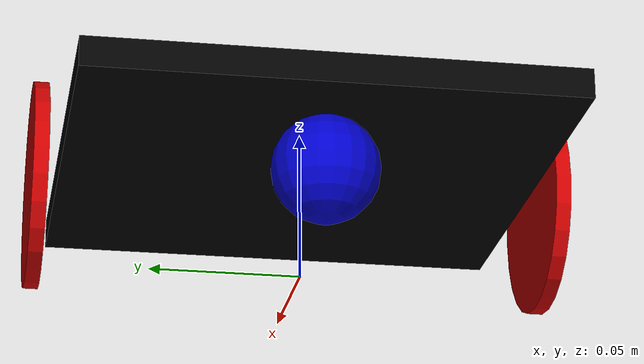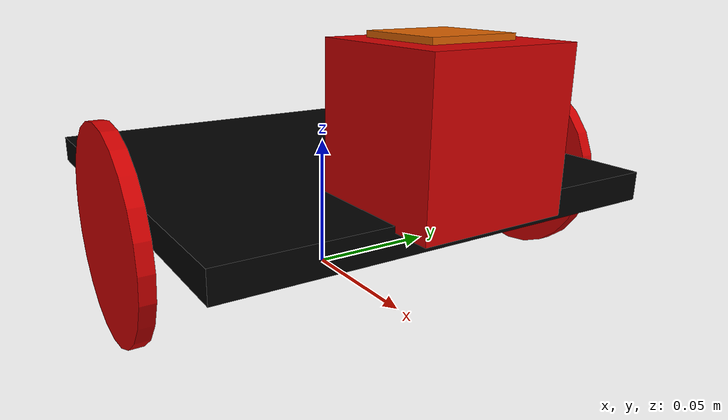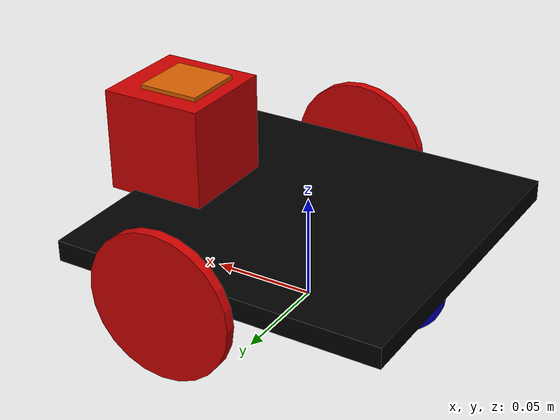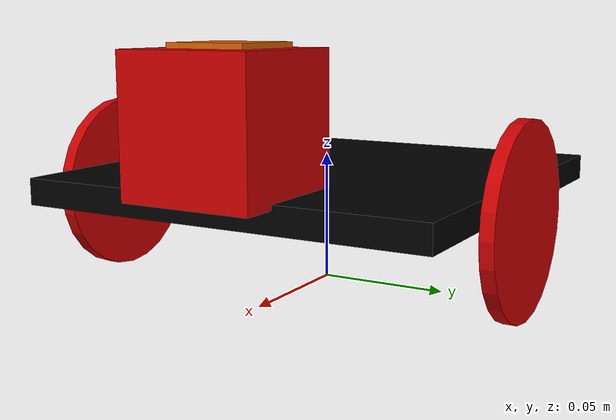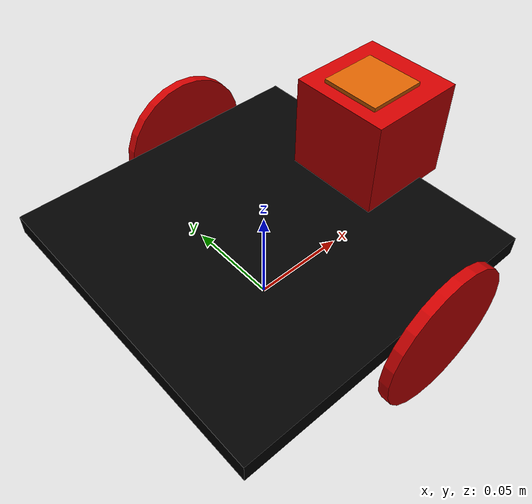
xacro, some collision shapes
<?xml version="1.0"?>
<robot xmlns:xacro="http://www.ros.org/wiki/xacro" name="kbot">

  <xacro:property name="base_width" value="0.16"/>
  <xacro:property name="base_len" value="0.16"/>
  <xacro:property name="wheel_radius" value="0.035"/>
  <xacro:property name="base_wheel_gap" value="0.007"/>
  <xacro:property name="wheel_separation" value="0.15"/>
  <xacro:property name="wheel_joint_offset" value="0.02"/>

  <xacro:property name="caster_wheel_radius" value="${wheel_radius/2}"/>
  <xacro:property name="caster_wheel_mass" value="0.001"/>
  <xacro:property name="caster_wheel_joint_offset" value="-0.052"/>

  <!-- camera Added by me -->
  <xacro:property name="camera_link" value="0.05" /> <!-- Size of square 'camera' box -->

  <!-- Laser plugIn properties -->
  <xacro:property name="laser_size_x" value="0.03"/>
  <xacro:property name="laser_size_y" value="0.03"/>
  <xacro:property name="laser_size_z" value="0.04"/>
  <xacro:property name="laser_origin_x" value="0.065"/>
  <xacro:property name="laser_origin_y" value="0"/>
  <xacro:property name="laser_origin_z" value="0.035"/>

  <!--Color Properties-->
  <material name="blue">
    <color rgba="0 0 0.8 1"/>
  </material>
  <material name="black">
    <color rgba="0 0 0 1"/>
  </material>
  <material name="white">
    <color rgba="1 1 1 1"/>
  </material>
  <material name="red">
    <color rgba="0.8 0.0 0.0 1.0"/>
  </material>

  <!--Interial macros-->
  <xacro:macro name="cylinder_inertia" params="m r h">
    <inertial>
      <mass value="${m}"/>
      <inertia ixx="${m*(3*r*r+h*h)/12}" ixy = "0" ixz = "0" iyy="${m*(3*r*r+h*h)/12}" iyz = "0" izz="${m*r*r/2}"/>
    </inertial>
  </xacro:macro>

  <xacro:macro name="box_inertia" params="m w h d">
    <inertial>
      <mass value="${m}"/>
      <inertia ixx="${m / 12.0 * (d*d + h*h)}" ixy="0.0" ixz="0.0" iyy="${m / 12.0 * (w*w + h*h)}" iyz="0.0" izz="${m / 12.0 * (w*w + d*d)}"/>
    </inertial>
  </xacro:macro>

  <xacro:macro name="sphere_inertia" params="m r">
    <inertial>
      <mass value="${m}"/>
      <inertia ixx="${2.0*m*(r*r)/5.0}" ixy="0.0" ixz="0.0" iyy="${2.0*m*(r*r)/5.0}" iyz="0.0" izz="${2.0*m*(r*r)/5.0}"/>
    </inertial>
  </xacro:macro>

  <!--Base Footprint-->
  <link name="base_footprint">
    <xacro:box_inertia m="10" w="0.001" h="0.001" d="0.001"/>
    <visual>
        <origin xyz="0 0 0" rpy="0 0 0" />
        <geometry>
            <box size="0.001 0.001 0.001" />
        </geometry>
    </visual>
  </link>

  <!--Base link-->
  <link name="base_link">
    <xacro:box_inertia m="1" w="${base_len}" h="${base_width}" d="0.01"/>
    <visual>
      <geometry>
        <box size="${base_len} ${base_width} 0.01"/>
      </geometry>
      <material name="black"/>
    </visual>
    <collision>
      <geometry>
        <box size="${base_len} ${base_width} 0.01"/>
      </geometry>
    </collision>
  </link>

  <!--base_link to base_footprint Joint-->
  <joint name="base_link_joint" type="fixed">
    <origin xyz="0 0 ${wheel_radius + 0.005}" rpy="0 0 0" />
    <parent link="base_footprint"/>
    <child link="base_link" />
  </joint>

  <!--Wheel link & joint macro-->
  <xacro:macro name="wheel" params="prefix reflect">
    <link name="${prefix}_wheel">
      <visual>
        <origin xyz="0 0 0" rpy="${pi/2} 0 0"/>
        <geometry>
          <cylinder radius="${wheel_radius}" length="0.005"/>
        </geometry>
        <material name="red"/>
      </visual>
      <collision>
        <origin xyz="0 0 0" rpy="${pi/2} 0 0"/>
        <geometry>
          <cylinder radius="${wheel_radius}" length="0.005"/>
        </geometry>
      </collision>
      <xacro:cylinder_inertia m="1" r="${wheel_radius}" h="0.005"/>
    </link>

    <joint name="${prefix}_wheel_joint" type="continuous">
      <axis xyz="0 1 0" rpy="0 0 0" />
      <parent link="base_link"/>
      <child link="${prefix}_wheel"/>
      <origin xyz="${wheel_joint_offset} ${((base_width/2)+base_wheel_gap)*reflect} -0.005" rpy="0 0 0"/>
    </joint>
  </xacro:macro>

  <!--Create Left & Right Wheel links/joints-->
  <xacro:wheel prefix="left" reflect="1"/>
  <xacro:wheel prefix="right" reflect="-1"/>

  <!--Caster Wheel Link-->
  <link name="caster_wheel">
    <visual>
      <origin xyz="0 0 0" rpy="0 0 0"/>
      <geometry>
        <sphere radius="${caster_wheel_radius}"/>
      </geometry>
      <material name="blue"/>
    </visual>
    <collision>
      <origin xyz="0 0 0" rpy="0 0 0"/>
      <geometry>
        <sphere radius="${caster_wheel_radius}"/>
      </geometry>
    </collision>
    <xacro:sphere_inertia m="1" r="${caster_wheel_radius}"/>
  </link>

  <!--Caster Wheel Joint-->
  <joint name="caster_wheel_joint" type="continuous">
    <axis xyz="0 1 0" rpy="0 0 0" />
    <parent link="base_link"/>
    <child link="caster_wheel"/>
    <origin xyz="${caster_wheel_joint_offset} 0 -${caster_wheel_radius+0.005}" rpy="0 0 0"/>
  </joint>

<!-- Laser plugIn -->

 <link name="sensor_laser">
    <visual>
      <geometry>
        <mesh filename="package://kbot_description/meshes/meshes_hokuyo.dae"/>
      </geometry>
    </visual>
    <collision>
      <geometry>
        <box size="${laser_size_x} ${laser_size_y} ${laser_size_z}"/>
      </geometry>
    </collision>
    <xacro:box_inertia m="0.2" w="${laser_size_x}" h="${laser_size_y}" d="${laser_size_z}"/>
  </link>

  <joint name="sensor_laser_joint" type="fixed">
    <origin xyz="${laser_origin_x} ${laser_origin_y} ${laser_origin_z}" rpy="0 0 0" />
    <parent link="base_link"/>
    <child link="sensor_laser" />
  </joint>

<!-- added camera by me -->
  <joint name="camera_joint" type="fixed">
    <axis xyz="0 1 0" />
    <origin xyz="0.068 0.0 0.028" rpy="0 0 0"/>
    <parent link="base_link"/>
    <child link="camera_link"/>
  </joint>

  <!-- Camera -->

  <link name="camera_link">
    <collision>
      <origin xyz="0 0 0" rpy="0 0 0"/>
      <geometry>
    <box size="${camera_link} ${camera_link} ${camera_link}"/>
      </geometry>
    </collision>

    <visual>
      <origin xyz="0 0 0" rpy="0 0 0"/>
      <geometry>
    <box size="${camera_link} ${camera_link} ${camera_link}"/>
      </geometry>
      <material name="red"/>
    </visual>

    <inertial>
      <mass value="1e-5" />
      <origin xyz="0 0 0" rpy="0 0 0"/>
      <inertia ixx="1e-6" ixy="0" ixz="0" iyy="1e-6" iyz="0" izz="1e-6" />
    </inertial>
  </link>

<xacro:include filename="$(find kbot_description)/urdf/kbot_gazebo_plugins.xacro"/>

</robot>
